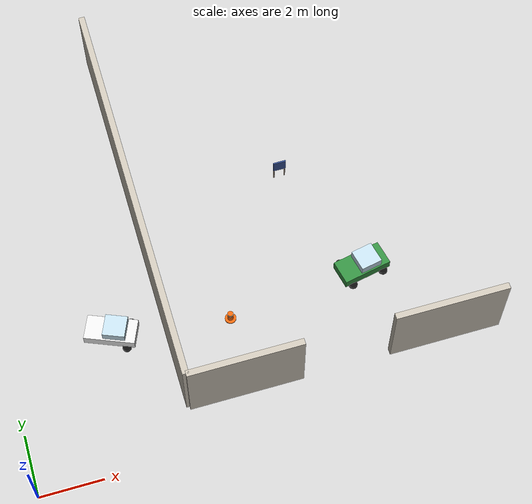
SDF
<sdf version="1.6">
 <world name="office_world">
  <include><uri>model://sun</uri></include>
  <include><uri>model://ground_plane</uri></include>
  <model name="wall_v_5_top">
   <static>true</static>
   <pose>5 8.25 1.25 0 0 0.0</pose>
   <link name="link">
    <collision name="collision"><geometry><box><size>0.2 13.5 2.5</size></box></geometry></collision>
    <visual name="visual">
     <geometry><box><size>0.2 13.5 2.5</size></box></geometry>
     <material><ambient>0.78 0.75 0.7 1</ambient><diffuse>0.78 0.75 0.7 1</diffuse></material>
    </visual>
   </link>
  </model>
  <model name="wall_h_top_10_left">
   <static>true</static>
   <pose>6.8 1.5 1.25 0 0 0.0</pose>
   <link name="link">
    <collision name="collision"><geometry><box><size>3.6 0.2 2.5</size></box></geometry></collision>
    <visual name="visual">
     <geometry><box><size>3.5999999999999996 0.2 2.5</size></box></geometry>
     <material><ambient>0.78 0.75 0.7 1</ambient><diffuse>0.78 0.75 0.7 1</diffuse></material>
    </visual>
   </link>
  </model>
  <model name="wall_h_top_10_right">
   <static>true</static>
   <pose>13.2 1.5 1.25 0 0 0.0</pose>
   <link name="link">
    <collision name="collision"><geometry><box><size>3.6 0.2 2.5</size></box></geometry></collision>
    <visual name="visual">
     <geometry><box><size>3.5999999999999996 0.2 2.5</size></box></geometry>
     <material><ambient>0.78 0.75 0.7 1</ambient><diffuse>0.78 0.75 0.7 1</diffuse></material>
    </visual>
   </link>
  </model>
  <model name="car_2_body">
   <static>true</static>
   <pose>3.3 4.5 0.30000000000000004 0 0 -0.4</pose>
   <link name="link">
    <collision name="collision"><geometry><box><size>1.6 0.8 0.32</size></box></geometry></collision>
    <visual name="visual">
     <geometry><box><size>1.6 0.8 0.32</size></box></geometry>
     <material><ambient>0.9 0.9 0.9 1</ambient><diffuse>0.9 0.9 0.9 1</diffuse></material>
    </visual>
   </link>
  </model>
  <model name="car_2_cabin">
   <static>true</static>
   <pose>3.4381591491004326 4.441587248653702 0.6000000000000001 0 0 -0.4</pose>
   <link name="link">
    <collision name="collision"><geometry><box><size>0.7 0.7 0.28</size></box></geometry></collision>
    <visual name="visual">
     <geometry><box><size>0.7 0.7 0.28</size></box></geometry>
     <material><ambient>0.75 0.85 0.9 0.9</ambient><diffuse>0.75 0.85 0.9 0.9</diffuse></material>
    </visual>
   </link>
  </model>
  <model name="car_2_wheel_1_-1">
   <static>true</static>
   <pose>3.6430278429319536 3.898974294249031 0.14 0 0 0</pose>
   <link name="link">
    <collision name="collision">
     <geometry><cylinder><radius>0.14</radius><length>0.08</length></cylinder></geometry>
    </collision>
    <visual name="visual">
     <geometry><cylinder><radius>0.14</radius><length>0.08</length></cylinder></geometry>
     <material><ambient>0.05 0.05 0.05 1</ambient><diffuse>0.05 0.05 0.05 1</diffuse></material>
    </visual>
   </link>
  </model>
  <model name="car_2_wheel_1_1">
   <static>true</static>
   <pose>3.9701392504712203 4.6726655292114545 0.14 0 0 0</pose>
   <link name="link">
    <collision name="collision">
     <geometry><cylinder><radius>0.14</radius><length>0.08</length></cylinder></geometry>
    </collision>
    <visual name="visual">
     <geometry><cylinder><radius>0.14</radius><length>0.08</length></cylinder></geometry>
     <material><ambient>0.05 0.05 0.05 1</ambient><diffuse>0.05 0.05 0.05 1</diffuse></material>
    </visual>
   </link>
  </model>
  <model name="chair_7_back">
   <static>true</static>
   <pose>10.00000069790897 8.610000000001282 0.65 0 0 1.5708</pose>
   <link name="link">
    <collision name="collision"><geometry><box><size>0.05 0.42 0.42</size></box></geometry></collision>
    <visual name="visual">
     <geometry><box><size>0.05 0.42 0.42</size></box></geometry>
     <material><ambient>0.2 0.3 0.55 1</ambient><diffuse>0.2 0.3 0.55 1</diffuse></material>
    </visual>
   </link>
  </model>
  <model name="chair_7_leg_-1_-1">
   <static>true</static>
   <pose>10.180000661175706 8.620000661178134 0.225 0 0 0</pose>
   <link name="link">
    <collision name="collision">
     <geometry><cylinder><radius>0.02</radius><length>0.45</length></cylinder></geometry>
    </collision>
    <visual name="visual">
     <geometry><cylinder><radius>0.02</radius><length>0.45</length></cylinder></geometry>
     <material><ambient>0.15 0.1 0.05 1</ambient><diffuse>0.15 0.1 0.05 1</diffuse></material>
    </visual>
   </link>
  </model>
  <model name="chair_7_leg_-1_1">
   <static>true</static>
   <pose>9.820000661178133 8.619999338824295 0.225 0 0 0</pose>
   <link name="link">
    <collision name="collision">
     <geometry><cylinder><radius>0.02</radius><length>0.45</length></cylinder></geometry>
    </collision>
    <visual name="visual">
     <geometry><cylinder><radius>0.02</radius><length>0.45</length></cylinder></geometry>
     <material><ambient>0.15 0.1 0.05 1</ambient><diffuse>0.15 0.1 0.05 1</diffuse></material>
    </visual>
   </link>
  </model>
  <model name="cone_3_base">
   <static>true</static>
   <pose>7 4 0.02 0 0 0</pose>
   <link name="link">
    <collision name="collision">
     <geometry><cylinder><radius>0.18</radius><length>0.04</length></cylinder></geometry>
    </collision>
    <visual name="visual">
     <geometry><cylinder><radius>0.18</radius><length>0.04</length></cylinder></geometry>
     <material><ambient>0.95 0.4 0.05 1</ambient><diffuse>0.95 0.4 0.05 1</diffuse></material>
    </visual>
   </link>
  </model>
  <model name="cone_3_body">
   <static>true</static>
   <pose>7 4 0.2 0 0 0</pose>
   <link name="link">
    <collision name="collision">
     <geometry><cylinder><radius>0.09</radius><length>0.32</length></cylinder></geometry>
    </collision>
    <visual name="visual">
     <geometry><cylinder><radius>0.09</radius><length>0.32</length></cylinder></geometry>
     <material><ambient>0.95 0.4 0.05 1</ambient><diffuse>0.95 0.4 0.05 1</diffuse></material>
    </visual>
   </link>
  </model>
  <model name="cone_3_stripe">
   <static>true</static>
   <pose>7 4 0.31 0 0 0</pose>
   <link name="link">
    <collision name="collision">
     <geometry><cylinder><radius>0.1</radius><length>0.04</length></cylinder></geometry>
    </collision>
    <visual name="visual">
     <geometry><cylinder><radius>0.1</radius><length>0.04</length></cylinder></geometry>
     <material><ambient>0.95 0.95 0.9 1</ambient><diffuse>0.95 0.95 0.9 1</diffuse></material>
    </visual>
   </link>
  </model>
  <model name="car_3_body">
   <static>true</static>
   <pose>11.5 4.5 0.30000000000000004 0 0 0.2</pose>
   <link name="link">
    <collision name="collision"><geometry><box><size>1.6 0.8 0.32</size></box></geometry></collision>
    <visual name="visual">
     <geometry><box><size>1.6 0.8 0.32</size></box></geometry>
     <material><ambient>0.2 0.55 0.25 1</ambient><diffuse>0.2 0.55 0.25 1</diffuse></material>
    </visual>
   </link>
  </model>
  <model name="car_3_cabin">
   <static>true</static>
   <pose>11.647009986676187 4.529800399619259 0.6000000000000001 0 0 0.2</pose>
   <link name="link">
    <collision name="collision"><geometry><box><size>0.7 0.7 0.28</size></box></geometry></collision>
    <visual name="visual">
     <geometry><box><size>0.7 0.7 0.28</size></box></geometry>
     <material><ambient>0.75 0.85 0.9 0.9</ambient><diffuse>0.75 0.85 0.9 0.9</diffuse></material>
    </visual>
   </link>
  </model>
  <model name="car_3_wheel_-1_-1">
   <static>true</static>
   <pose>11.044404501121244 3.979103905369395 0.14 0 0 0</pose>
   <link name="link">
    <collision name="collision">
     <geometry><cylinder><radius>0.14</radius><length>0.08</length></cylinder></geometry>
    </collision>
    <visual name="visual">
     <geometry><cylinder><radius>0.14</radius><length>0.08</length></cylinder></geometry>
     <material><ambient>0.05 0.05 0.05 1</ambient><diffuse>0.05 0.05 0.05 1</diffuse></material>
    </visual>
   </link>
  </model>
  <model name="car_3_wheel_-1_1">
   <static>true</static>
   <pose>10.877522263253391 4.802359830756038 0.14 0 0 0</pose>
   <link name="link">
    <collision name="collision">
     <geometry><cylinder><radius>0.14</radius><length>0.08</length></cylinder></geometry>
    </collision>
    <visual name="visual">
     <geometry><cylinder><radius>0.14</radius><length>0.08</length></cylinder></geometry>
     <material><ambient>0.05 0.05 0.05 1</ambient><diffuse>0.05 0.05 0.05 1</diffuse></material>
    </visual>
   </link>
  </model>
  <model name="car_3_wheel_1_-1">
   <static>true</static>
   <pose>12.122477736746609 4.197640169243962 0.14 0 0 0</pose>
   <link name="link">
    <collision name="collision">
     <geometry><cylinder><radius>0.14</radius><length>0.08</length></cylinder></geometry>
    </collision>
    <visual name="visual">
     <geometry><cylinder><radius>0.14</radius><length>0.08</length></cylinder></geometry>
     <material><ambient>0.05 0.05 0.05 1</ambient><diffuse>0.05 0.05 0.05 1</diffuse></material>
    </visual>
   </link>
  </model>
  <model name="car_3_wheel_1_1">
   <static>true</static>
   <pose>11.955595498878756 5.020896094630605 0.14 0 0 0</pose>
   <link name="link">
    <collision name="collision">
     <geometry><cylinder><radius>0.14</radius><length>0.08</length></cylinder></geometry>
    </collision>
    <visual name="visual">
     <geometry><cylinder><radius>0.14</radius><length>0.08</length></cylinder></geometry>
     <material><ambient>0.05 0.05 0.05 1</ambient><diffuse>0.05 0.05 0.05 1</diffuse></material>
    </visual>
   </link>
  </model>
 </world>
</sdf>
